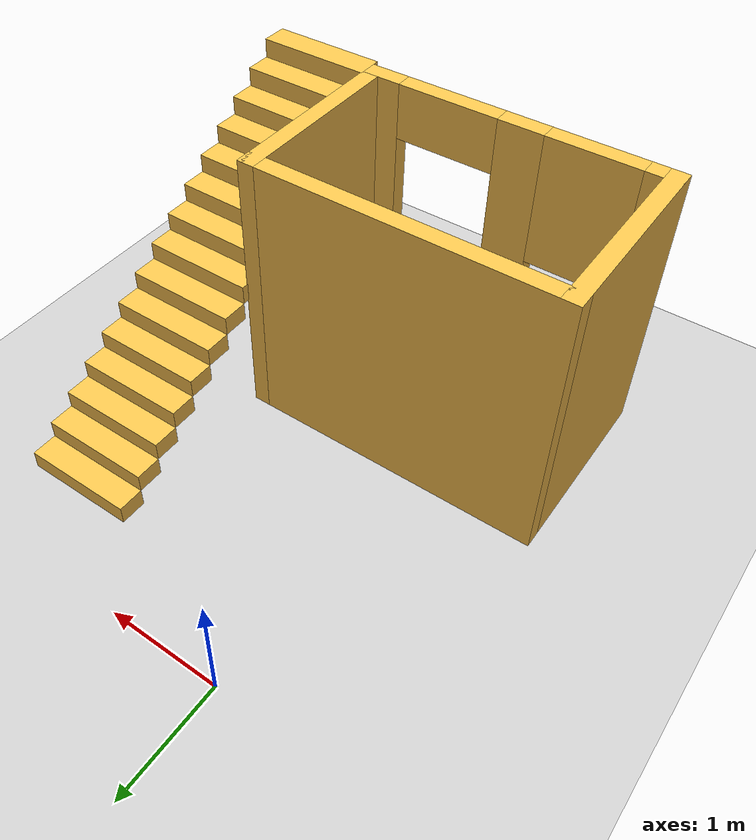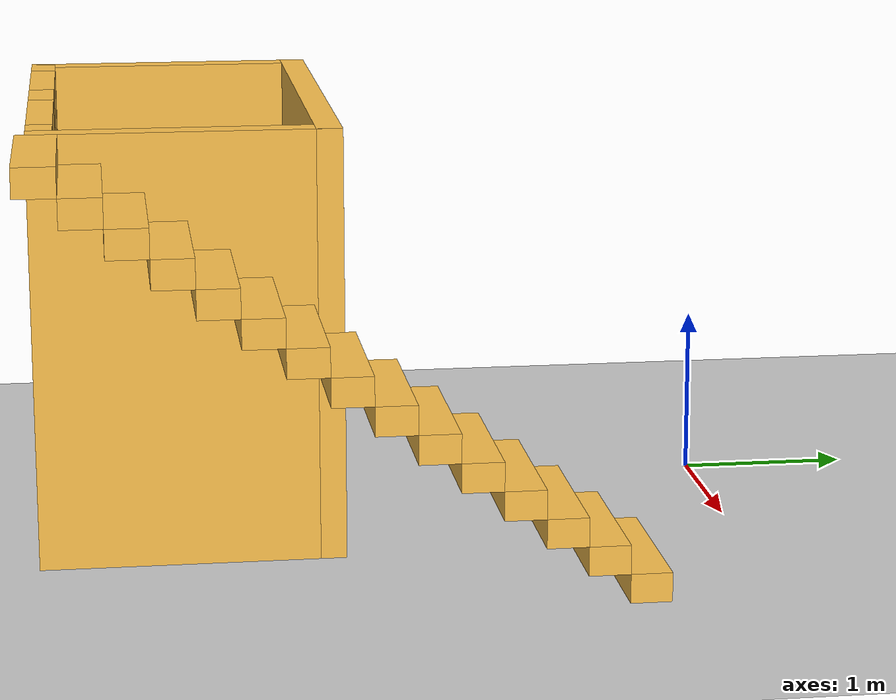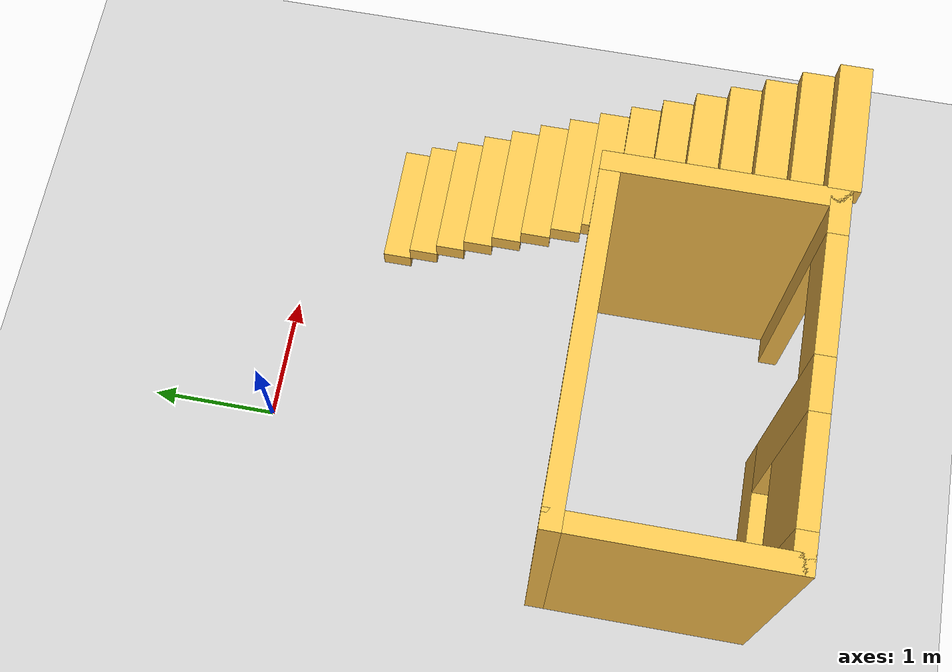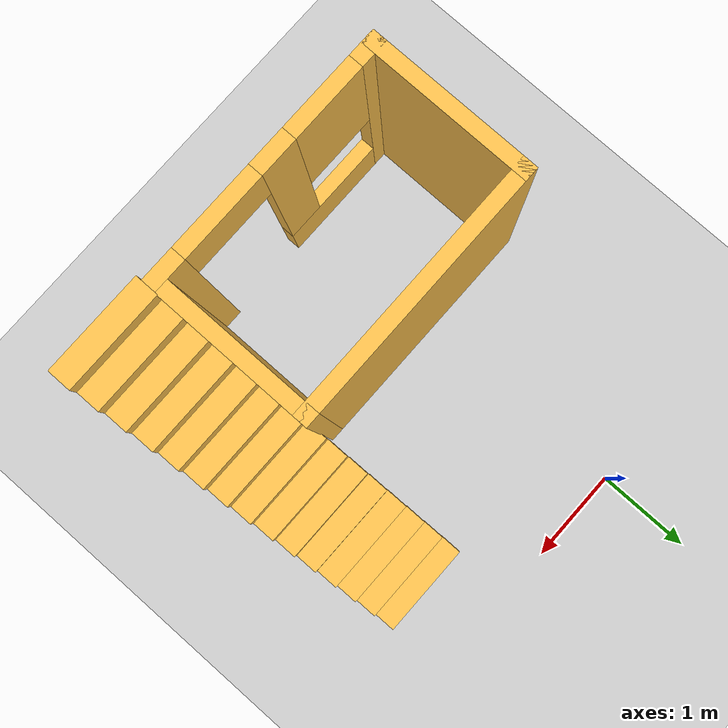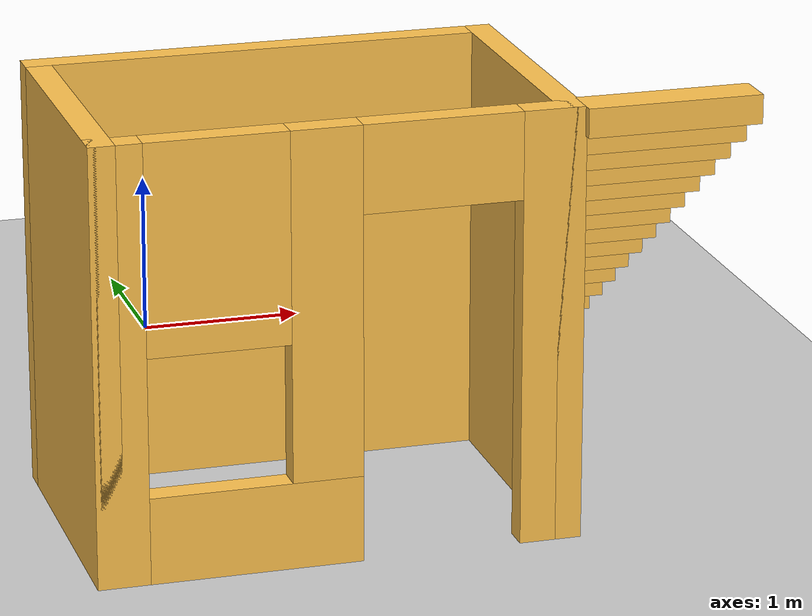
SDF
<sdf version="1.7">
 <world name="default">
  <light name="sun" type="directional">
   <pose>0 0 10 0 -0 0</pose>
   <diffuse>0.8 0.8 0.8 1</diffuse>
   <specular>0.2 0.2 0.2 1</specular>
   <attenuation>
    <range>1000</range>
    <constant>0.9</constant>
    <linear>0.01</linear>
    <quadratic>0.001</quadratic>
   </attenuation>
   <direction>-0.5 0.1 -0.9</direction>
   <spot><inner_angle>0</inner_angle><outer_angle>0</outer_angle><falloff>0</falloff></spot>
  </light>
  <model name="ground_plane">
   <static>1</static>
   <link name="link">
    <collision name="collision">
     <geometry><plane><normal>0 0 1</normal><size>100 100</size></plane></geometry>
     <surface>
      <contact><collide_bitmask>65535</collide_bitmask></contact>
      <friction><ode><mu>100</mu><mu2>50</mu2></ode></friction>
     </surface>
    </collision>
    <visual name="visual">
     <cast_shadows>0</cast_shadows>
     <geometry><plane><normal>0 0 1</normal><size>100 100</size></plane></geometry>
     <material>
      <script><uri>file://media/materials/scripts/gazebo.material</uri><name>Gazebo/Grey</name></script>
     </material>
    </visual>
   </link>
  </model>
  <gravity>0 0 -9.8</gravity>
  <magnetic_field>6e-06 2.3e-05 -4.2e-05</magnetic_field>
  <atmosphere type="adiabatic"/>
  <physics type="ode">
   <max_step_size>0.001</max_step_size>
   <real_time_factor>1</real_time_factor>
   <real_time_update_rate>1000</real_time_update_rate>
  </physics>
  <scene><ambient>0.4 0.4 0.4 1</ambient><background>0.7 0.7 0.7 1</background><shadows>1</shadows></scene>
  <spherical_coordinates>
   <surface_model>EARTH_WGS84</surface_model>
   <latitude_deg>0</latitude_deg>
   <longitude_deg>0</longitude_deg>
   <elevation>0</elevation>
   <heading_deg>0</heading_deg>
  </spherical_coordinates>
  <model name="Untitled">
   <pose>0.655792 -2.07002 0 0 -0 0</pose>
   <link name="Stairs_1">
    <visual name="Stairs_1_Visual_0">
     <pose>1.37079 1.31331 0.083333 0 -0 0</pose>
     <geometry><box><size>1 0.233333 0.166667</size></box></geometry>
     <material>
      <script><uri>file://media/materials/scripts/gazebo.material</uri><name>Gazebo/Grey</name></script>
      <ambient>1 0.764706 0.305882 1</ambient>
     </material>
     <meta><layer>0</layer></meta>
    </visual>
    <collision name="Stairs_1_Collision_0">
     <geometry><box><size>1 0.233333 0.166667</size></box></geometry>
     <pose>1.37079 1.31331 0.083333 0 -0 0</pose>
    </collision>
    <visual name="Stairs_1_Visual_1">
     <pose>1.37079 1.07998 0.25 0 -0 0</pose>
     <geometry><box><size>1 0.233333 0.166667</size></box></geometry>
     <material>
      <script><uri>file://media/materials/scripts/gazebo.material</uri><name>Gazebo/Grey</name></script>
      <ambient>1 0.764706 0.305882 1</ambient>
     </material>
     <meta><layer>0</layer></meta>
    </visual>
    <collision name="Stairs_1_Collision_1">
     <geometry><box><size>1 0.233333 0.166667</size></box></geometry>
     <pose>1.37079 1.07998 0.25 0 -0 0</pose>
    </collision>
    <visual name="Stairs_1_Visual_2">
     <pose>1.37079 0.846645 0.416667 0 -0 0</pose>
     <geometry><box><size>1 0.233333 0.166667</size></box></geometry>
     <material>
      <script><uri>file://media/materials/scripts/gazebo.material</uri><name>Gazebo/Grey</name></script>
      <ambient>1 0.764706 0.305882 1</ambient>
     </material>
     <meta><layer>0</layer></meta>
    </visual>
    <collision name="Stairs_1_Collision_2">
     <geometry><box><size>1 0.233333 0.166667</size></box></geometry>
     <pose>1.37079 0.846645 0.416667 0 -0 0</pose>
    </collision>
    <visual name="Stairs_1_Visual_3">
     <pose>1.37079 0.613311 0.583333 0 -0 0</pose>
     <geometry><box><size>1 0.233333 0.166667</size></box></geometry>
     <material>
      <script><uri>file://media/materials/scripts/gazebo.material</uri><name>Gazebo/Grey</name></script>
      <ambient>1 0.764706 0.305882 1</ambient>
     </material>
     <meta><layer>0</layer></meta>
    </visual>
    <collision name="Stairs_1_Collision_3">
     <geometry><box><size>1 0.233333 0.166667</size></box></geometry>
     <pose>1.37079 0.613311 0.583333 0 -0 0</pose>
    </collision>
    <visual name="Stairs_1_Visual_4">
     <pose>1.37079 0.379978 0.75 0 -0 0</pose>
     <geometry><box><size>1 0.233333 0.166667</size></box></geometry>
     <material>
      <script><uri>file://media/materials/scripts/gazebo.material</uri><name>Gazebo/Grey</name></script>
      <ambient>1 0.764706 0.305882 1</ambient>
     </material>
     <meta><layer>0</layer></meta>
    </visual>
    <collision name="Stairs_1_Collision_4">
     <geometry><box><size>1 0.233333 0.166667</size></box></geometry>
     <pose>1.37079 0.379978 0.75 0 -0 0</pose>
    </collision>
    <visual name="Stairs_1_Visual_5">
     <pose>1.37079 0.146645 0.916667 0 -0 0</pose>
     <geometry><box><size>1 0.233333 0.166667</size></box></geometry>
     <material>
      <script><uri>file://media/materials/scripts/gazebo.material</uri><name>Gazebo/Grey</name></script>
      <ambient>1 0.764706 0.305882 1</ambient>
     </material>
     <meta><layer>0</layer></meta>
    </visual>
    <collision name="Stairs_1_Collision_5">
     <geometry><box><size>1 0.233333 0.166667</size></box></geometry>
     <pose>1.37079 0.146645 0.916667 0 -0 0</pose>
    </collision>
    <visual name="Stairs_1_Visual_6">
     <pose>1.37079 -0.086689 1.08333 0 -0 0</pose>
     <geometry><box><size>1 0.233333 0.166667</size></box></geometry>
     <material>
      <script><uri>file://media/materials/scripts/gazebo.material</uri><name>Gazebo/Grey</name></script>
      <ambient>1 0.764706 0.305882 1</ambient>
     </material>
     <meta><layer>0</layer></meta>
    </visual>
    <collision name="Stairs_1_Collision_6">
     <geometry><box><size>1 0.233333 0.166667</size></box></geometry>
     <pose>1.37079 -0.086689 1.08333 0 -0 0</pose>
    </collision>
    <visual name="Stairs_1_Visual_7">
     <pose>1.37079 -0.320022 1.25 0 -0 0</pose>
     <geometry><box><size>1 0.233333 0.166667</size></box></geometry>
     <material>
      <script><uri>file://media/materials/scripts/gazebo.material</uri><name>Gazebo/Grey</name></script>
      <ambient>1 0.764706 0.305882 1</ambient>
     </material>
     <meta><layer>0</layer></meta>
    </visual>
    <collision name="Stairs_1_Collision_7">
     <geometry><box><size>1 0.233333 0.166667</size></box></geometry>
     <pose>1.37079 -0.320022 1.25 0 -0 0</pose>
    </collision>
    <visual name="Stairs_1_Visual_8">
     <pose>1.37079 -0.553355 1.41667 0 -0 0</pose>
     <geometry><box><size>1 0.233333 0.166667</size></box></geometry>
     <material>
      <script><uri>file://media/materials/scripts/gazebo.material</uri><name>Gazebo/Grey</name></script>
      <ambient>1 0.764706 0.305882 1</ambient>
     </material>
     <meta><layer>0</layer></meta>
    </visual>
    <collision name="Stairs_1_Collision_8">
     <geometry><box><size>1 0.233333 0.166667</size></box></geometry>
     <pose>1.37079 -0.553355 1.41667 0 -0 0</pose>
    </collision>
    <visual name="Stairs_1_Visual_9">
     <pose>1.37079 -0.786689 1.58333 0 -0 0</pose>
     <geometry><box><size>1 0.233333 0.166667</size></box></geometry>
     <material>
      <script><uri>file://media/materials/scripts/gazebo.material</uri><name>Gazebo/Grey</name></script>
      <ambient>1 0.764706 0.305882 1</ambient>
     </material>
     <meta><layer>0</layer></meta>
    </visual>
    <collision name="Stairs_1_Collision_9">
     <geometry><box><size>1 0.233333 0.166667</size></box></geometry>
     <pose>1.37079 -0.786689 1.58333 0 -0 0</pose>
    </collision>
    <visual name="Stairs_1_Visual_10">
     <pose>1.37079 -1.02002 1.75 0 -0 0</pose>
     <geometry><box><size>1 0.233333 0.166667</size></box></geometry>
     <material>
      <script><uri>file://media/materials/scripts/gazebo.material</uri><name>Gazebo/Grey</name></script>
      <ambient>1 0.764706 0.305882 1</ambient>
     </material>
     <meta><layer>0</layer></meta>
    </visual>
    <collision name="Stairs_1_Collision_10">
     <geometry><box><size>1 0.233333 0.166667</size></box></geometry>
     <pose>1.37079 -1.02002 1.75 0 -0 0</pose>
    </collision>
    <visual name="Stairs_1_Visual_11">
     <pose>1.37079 -1.25336 1.91667 0 -0 0</pose>
     <geometry><box><size>1 0.233333 0.166667</size></box></geometry>
     <material>
      <script><uri>file://media/materials/scripts/gazebo.material</uri><name>Gazebo/Grey</name></script>
      <ambient>1 0.764706 0.305882 1</ambient>
     </material>
     <meta><layer>0</layer></meta>
    </visual>
    <collision name="Stairs_1_Collision_11">
     <geometry><box><size>1 0.233333 0.166667</size></box></geometry>
     <pose>1.37079 -1.25336 1.91667 0 -0 0</pose>
    </collision>
    <visual name="Stairs_1_Visual_12">
     <pose>1.37079 -1.48669 2.08333 0 -0 0</pose>
     <geometry><box><size>1 0.233333 0.166667</size></box></geometry>
     <material>
      <script><uri>file://media/materials/scripts/gazebo.material</uri><name>Gazebo/Grey</name></script>
      <ambient>1 0.764706 0.305882 1</ambient>
     </material>
     <meta><layer>0</layer></meta>
    </visual>
    <collision name="Stairs_1_Collision_12">
     <geometry><box><size>1 0.233333 0.166667</size></box></geometry>
     <pose>1.37079 -1.48669 2.08333 0 -0 0</pose>
    </collision>
    <visual name="Stairs_1_Visual_13">
     <pose>1.37079 -1.72002 2.25 0 -0 0</pose>
     <geometry><box><size>1 0.233333 0.166667</size></box></geometry>
     <material>
      <script><uri>file://media/materials/scripts/gazebo.material</uri><name>Gazebo/Grey</name></script>
      <ambient>1 0.764706 0.305882 1</ambient>
     </material>
     <meta><layer>0</layer></meta>
    </visual>
    <collision name="Stairs_1_Collision_13">
     <geometry><box><size>1 0.233333 0.166667</size></box></geometry>
     <pose>1.37079 -1.72002 2.25 0 -0 0</pose>
    </collision>
    <visual name="Stairs_1_Visual_14">
     <pose>1.37079 -1.95335 2.41667 0 -0 0</pose>
     <geometry><box><size>1 0.233333 0.166667</size></box></geometry>
     <material>
      <script><uri>file://media/materials/scripts/gazebo.material</uri><name>Gazebo/Grey</name></script>
      <ambient>1 0.764706 0.305882 1</ambient>
     </material>
     <meta><layer>0</layer></meta>
    </visual>
    <collision name="Stairs_1_Collision_14">
     <geometry><box><size>1 0.233333 0.166667</size></box></geometry>
     <pose>1.37079 -1.95335 2.41667 0 -0 0</pose>
    </collision>
   </link>
   <link name="Wall_2">
    <pose>-0.495792 -1.93998 0 0 -0 0</pose>
    <visual name="Wall_2_Visual_0">
     <pose>-1.2275 0 1.25 0 -0 0</pose>
     <geometry><box><size>0.295 0.15 2.5</size></box></geometry>
     <material>
      <script><uri>file://media/materials/scripts/gazebo.material</uri><name>Gazebo/Grey</name></script>
      <ambient>1 0.764706 0.305882 1</ambient>
     </material>
     <meta><layer>0</layer></meta>
    </visual>
    <collision name="Wall_2_Collision_0">
     <geometry><box><size>0.295 0.15 2.5</size></box></geometry>
     <pose>-1.2275 0 1.25 0 -0 0</pose>
    </collision>
    <visual name="Wall_2_Visual_1">
     <pose>1.1975 0 1.25 0 -0 0</pose>
     <geometry><box><size>0.355 0.15 2.5</size></box></geometry>
     <material>
      <script><uri>file://media/materials/scripts/gazebo.material</uri><name>Gazebo/Grey</name></script>
      <ambient>1 0.764706 0.305882 1</ambient>
     </material>
     <meta><layer>0</layer></meta>
    </visual>
    <collision name="Wall_2_Collision_1">
     <geometry><box><size>0.355 0.15 2.5</size></box></geometry>
     <pose>1.1975 0 1.25 0 -0 0</pose>
    </collision>
    <visual name="Wall_2_Visual_2">
     <pose>-0.48 0 0.25 0 -0 0</pose>
     <geometry><box><size>1.2 0.15 0.5</size></box></geometry>
     <material>
      <script><uri>file://media/materials/scripts/gazebo.material</uri><name>Gazebo/Grey</name></script>
      <ambient>1 0.764706 0.305882 1</ambient>
     </material>
     <meta><layer>0</layer></meta>
    </visual>
    <collision name="Wall_2_Collision_2">
     <geometry><box><size>1.2 0.15 0.5</size></box></geometry>
     <pose>-0.48 0 0.25 0 -0 0</pose>
    </collision>
    <visual name="Wall_2_Visual_3">
     <pose>-0.08 0 1.5 0 -0 0</pose>
     <geometry><box><size>0.4 0.15 2</size></box></geometry>
     <material>
      <script><uri>file://media/materials/scripts/gazebo.material</uri><name>Gazebo/Grey</name></script>
      <ambient>1 0.764706 0.305882 1</ambient>
     </material>
     <meta><layer>0</layer></meta>
    </visual>
    <collision name="Wall_2_Collision_3">
     <geometry><box><size>0.4 0.15 2</size></box></geometry>
     <pose>-0.08 0 1.5 0 -0 0</pose>
    </collision>
    <visual name="Wall_2_Visual_4">
     <pose>-0.68 0 1.9 0 -0 0</pose>
     <geometry><box><size>0.8 0.15 1.2</size></box></geometry>
     <material>
      <script><uri>file://media/materials/scripts/gazebo.material</uri><name>Gazebo/Grey</name></script>
      <ambient>1 0.764706 0.305882 1</ambient>
     </material>
     <meta><layer>0</layer></meta>
    </visual>
    <collision name="Wall_2_Collision_4">
     <geometry><box><size>0.8 0.15 1.2</size></box></geometry>
     <pose>-0.68 0 1.9 0 -0 0</pose>
    </collision>
    <visual name="Wall_2_Visual_5">
     <pose>0.57 0 2.25 0 -0 0</pose>
     <geometry><box><size>0.9 0.15 0.5</size></box></geometry>
     <material>
      <script><uri>file://media/materials/scripts/gazebo.material</uri><name>Gazebo/Grey</name></script>
      <ambient>1 0.764706 0.305882 1</ambient>
     </material>
     <meta><layer>0</layer></meta>
    </visual>
    <collision name="Wall_2_Collision_5">
     <geometry><box><size>0.9 0.15 0.5</size></box></geometry>
     <pose>0.57 0 2.25 0 -0 0</pose>
    </collision>
   </link>
   <link name="Wall_3">
    <collision name="Wall_3_Collision">
     <geometry><box><size>1.75 0.15 2.5</size></box></geometry>
     <pose>0 0 1.25 0 -0 0</pose>
    </collision>
    <visual name="Wall_3_Visual">
     <pose>0 0 1.25 0 -0 0</pose>
     <geometry><box><size>1.75 0.15 2.5</size></box></geometry>
     <material>
      <script><uri>file://media/materials/scripts/gazebo.material</uri><name>Gazebo/Grey</name></script>
      <ambient>1 0.764706 0.305882 1</ambient>
     </material>
     <meta><layer>0</layer></meta>
    </visual>
    <pose>0.804208 -1.13998 0 0 -0 1.5708</pose>
   </link>
   <link name="Wall_4">
    <collision name="Wall_4_Collision">
     <geometry><box><size>2.75 0.15 2.5</size></box></geometry>
     <pose>0 0 1.25 0 -0 0</pose>
    </collision>
    <visual name="Wall_4_Visual">
     <pose>0 0 1.25 0 -0 0</pose>
     <geometry><box><size>2.75 0.15 2.5</size></box></geometry>
     <material>
      <script><uri>file://media/materials/scripts/gazebo.material</uri><name>Gazebo/Grey</name></script>
      <ambient>1 0.764706 0.305882 1</ambient>
     </material>
     <meta><layer>0</layer></meta>
    </visual>
    <pose>-0.495792 -0.339978 0 0 -0 3.14159</pose>
   </link>
   <link name="Wall_5">
    <collision name="Wall_5_Collision">
     <geometry><box><size>1.75 0.15 2.5</size></box></geometry>
     <pose>0 0 1.25 0 -0 0</pose>
    </collision>
    <visual name="Wall_5_Visual">
     <pose>0 0 1.25 0 -0 0</pose>
     <geometry><box><size>1.75 0.15 2.5</size></box></geometry>
     <material>
      <script><uri>file://media/materials/scripts/gazebo.material</uri><name>Gazebo/Grey</name></script>
      <ambient>1 0.764706 0.305882 1</ambient>
     </material>
     <meta><layer>0</layer></meta>
    </visual>
    <pose>-1.79579 -1.13998 0 0 -0 -1.5708</pose>
   </link>
   <static>1</static>
  </model>
 </world>
</sdf>
